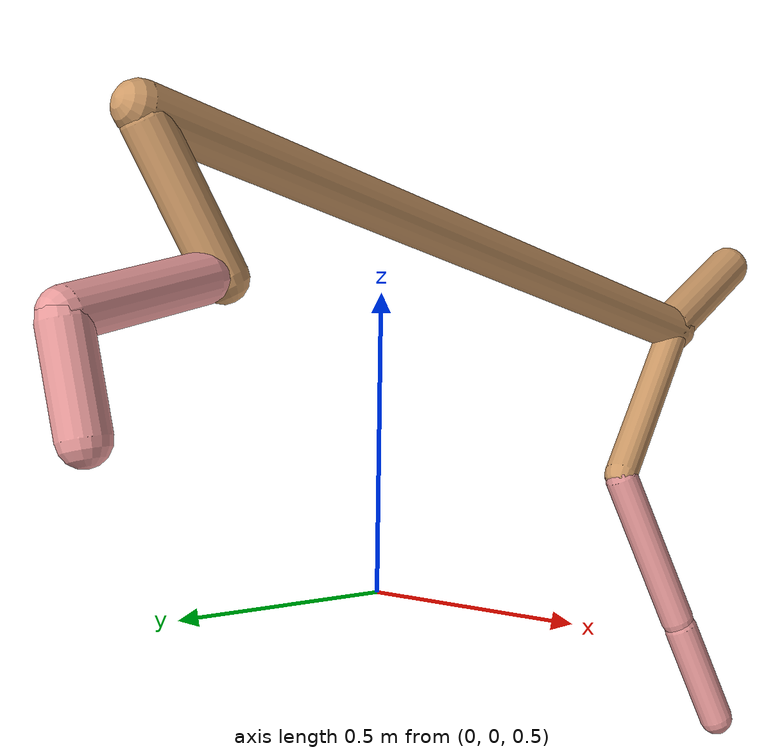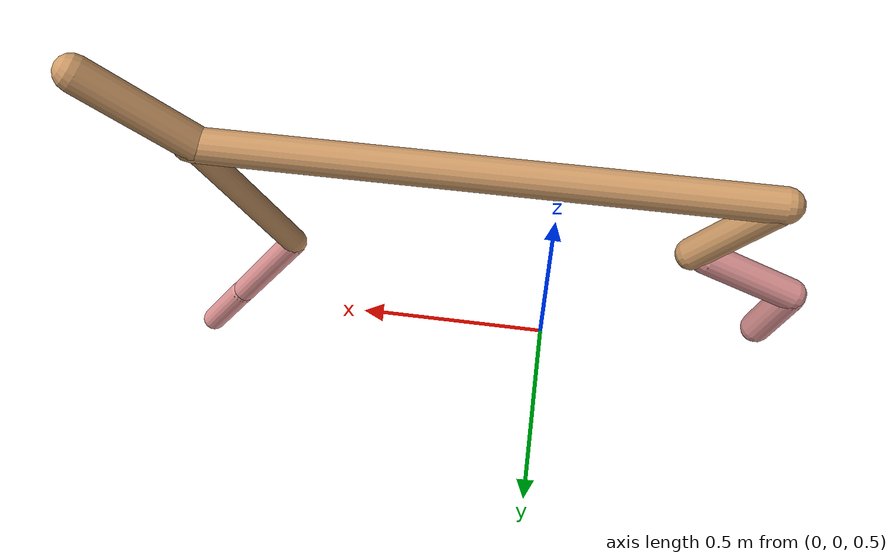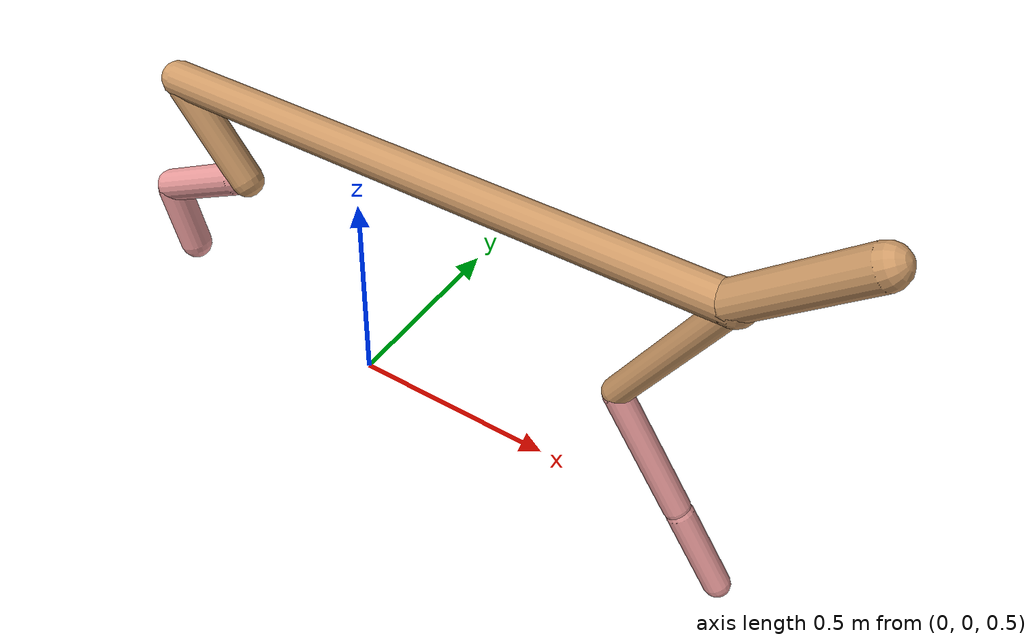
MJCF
<mujoco model="cheetah">
  <compiler angle="radian" coordinate="local" inertiafromgeom="true" settotalmass="14" />
  <default>
    <joint armature=".1" damping=".01" limited="true" solimplimit="0 .8 .03" solreflimit=".02 1" stiffness="8" />
    <geom conaffinity="0" condim="3" contype="1" friction="0.8 .1 .1" rgba="0.8 0.6 .4 1" solimp="0.0 0.8 0.01" solref="0.02 1" />
    <motor ctrllimited="true" ctrlrange="-1 1" />
  </default>
  <size nstack="300000" nuser_geom="1" />
  <option gravity="0 0 -9.81" timestep="0.01" />
  <worldbody>
    <body name="torso" pos="0.0 0.0 1.1495868721580003">
      <joint armature="0" axis="1 0 0" damping="0" limited="false" name="ignorex" pos="0 0 0" stiffness="0" type="slide" />
      <joint armature="0" axis="0 0 1" damping="0" limited="false" name="ignorez" pos="0 0 0" stiffness="0" type="slide" />
      <joint armature="0" axis="0 1 0" damping="0" limited="false" name="ignorey" pos="0 0 0" stiffness="0" type="hinge" />
      <geom fromto="-0.5 0.0 0.0 0.8592858013483282 0.0 0.0" name="torso" size="0.04248911495028477" type="capsule" />
      <geom axisangle="0 1 0 .87" name="head" pos="0.9592858013483282 0.0 0.1" size="0.04402403047965745 0.15" type="capsule" />

      <body name="bthigh" pos="-.5 0 0">
        <joint axis="0 1 0" damping="6" name="bthigh" pos="0 0 0" range="-.52 1.05" stiffness="240" type="hinge" />
        <geom axisangle="0 1 0 -3.8" name="bthigh" pos="0.08872872631885181 0.0 -0.11534734421450736" size="0.04002002249621688 0.12651373666844823" type="capsule" />
        <body name="bshin" pos="0.13745745263770362 0.0 -0.2206946884290147">
          <joint axis="0 1 0" damping="4.5" name="bshin" pos="0 0 0" range="-.785 .785" stiffness="180" type="hinge" />
          <geom axisangle="0 1 0 -2.03" name="bshin" pos="-0.12289522422373321 0.0 -0.061447612111866605" rgba="0.9 0.6 0.6 1" size="0.04002002249621688 0.13087627931218784" type="capsule" />
          <body name="bfoot" pos="-0.24579044844746642 0.0 -0.12289522422373321">
            <joint axis="0 1 0" damping="3" name="bfoot" pos="0 0 0" range="-.4 .785" stiffness="120" type="hinge" />
            <geom axisangle="0 1 0 -.27" name="bfoot" pos="0.02645903224953676 0.0 -0.08555087094016886" rgba="0.9 0.6 0.6 1" size="0.04002002249621688 0.08201580170230438" type="capsule" />
            <inertial mass="10" />
          </body>
        </body>
      </body>
      <body name="fthigh" pos="0.8592858013483282 0.0 0.0">
        <joint axis="0 1 0" damping="4.5" name="fthigh" pos="0 0 0" range="-1.5 0.8" stiffness="180" type="hinge" />
        <geom axisangle="0 1 0 .52" name="fthigh" pos="-0.10151568533341379 0.0 -0.17402688914299505" size="0.0322 0.19554712761193938" type="capsule" />
        <body name="fshin" pos="-0.20303137066682758 0.0 -0.3480537782859901">
          <joint axis="0 1 0" damping="3" name="fshin" pos="0 0 0" range="-1.2 1.1" stiffness="120" type="hinge" />
          <geom axisangle="0 1 0 -.6" name="fshin" pos="0.09418646430834696 0.0 -0.130412027503865" rgba="0.9 0.6 0.6 1" size="0.0322 0.1558495904275607" type="capsule" />
          <body name="ffoot" pos="0.1883729286166939 0.0 -0.26082405500773">
            <joint axis="0 1 0" damping="1.5" name="ffoot" pos="0 0 0" range="-3.1 -0.3" stiffness="60" type="hinge" />
            <geom axisangle="0 1 0 -.6" name="ffoot" pos="0.06280149161632124 0.0 -0.09769120918094416" rgba="0.9 0.6 0.6 1" size="0.0322 0.10291954084838915" type="capsule" />
            <inertial mass="10" />
          </body>
        </body>
      </body>
    </body>
  </worldbody>
  <actuator>
    <motor gear="120" joint="bthigh" name="bthigh" />
    <motor gear="90" joint="bshin" name="bshin" />
    <motor gear="60" joint="bfoot" name="bfoot" />
    <motor gear="120" joint="fthigh" name="fthigh" />
    <motor gear="60" joint="fshin" name="fshin" />
    <motor gear="30" joint="ffoot" name="ffoot" />
  </actuator>
</mujoco>
